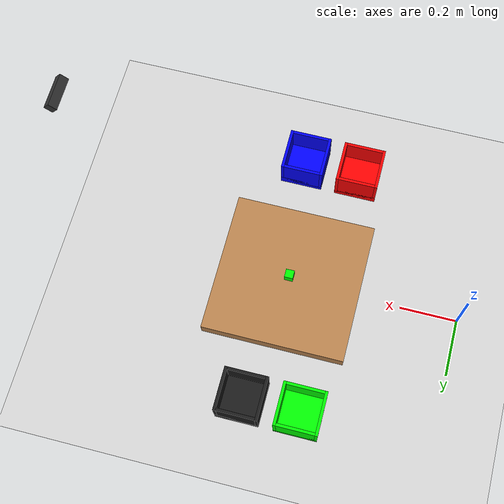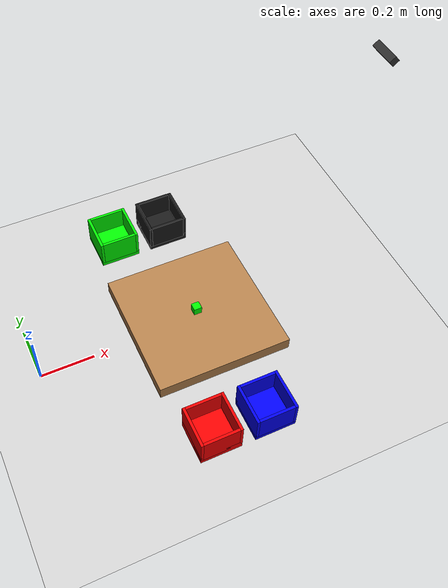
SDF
<?xml version="1.0" ?>
<sdf version="1.7">
  <world name="pick_place_world_with_bins">
    <!-- Physics settings -->
    <physics name="1ms" type="ignored">
      <max_step_size>0.001</max_step_size>
      <real_time_factor>1.0</real_time_factor>
    </physics>

    <!-- Plugin for physics -->
    <plugin filename="ignition-gazebo-physics-system" name="ignition::gazebo::systems::Physics">
    </plugin>

    <!-- Plugin for user commands -->
    <plugin filename="ignition-gazebo-user-commands-system" name="ignition::gazebo::systems::UserCommands">
    </plugin>

    <!-- Plugin for scene broadcasting -->
    <plugin filename="ignition-gazebo-scene-broadcaster-system" name="ignition::gazebo::systems::SceneBroadcaster">
    </plugin>

    <!-- Plugin for sensors (required for cameras and other sensors) -->
    <plugin filename="ignition-gazebo-sensors-system" name="ignition::gazebo::systems::Sensors">
      <render_engine>ogre2</render_engine>
    </plugin>

    <!-- Lighting -->
    <light type="directional" name="sun">
      <cast_shadows>true</cast_shadows>
      <pose>0 0 10 0 0 0</pose>
      <diffuse>0.8 0.8 0.8 1</diffuse>
      <specular>0.2 0.2 0.2 1</specular>
      <attenuation>
        <range>1000</range>
        <constant>0.9</constant>
        <linear>0.01</linear>
        <quadratic>0.001</quadratic>
      </attenuation>
      <direction>-0.5 0.1 -0.9</direction>
    </light>

    <!-- Ground plane -->
    <model name="ground_plane">
      <static>true</static>
      <link name="link">
        <collision name="collision">
          <geometry>
            <plane>
              <normal>0 0 1</normal>
              <size>100 100</size>
            </plane>
          </geometry>
        </collision>
        <visual name="visual">
          <geometry>
            <plane>
              <normal>0 0 1</normal>
              <size>100 100</size>
            </plane>
          </geometry>
          <material>
            <ambient>0.8 0.8 0.8 1</ambient>
            <diffuse>0.8 0.8 0.8 1</diffuse>
            <specular>0.8 0.8 0.8 1</specular>
          </material>
        </visual>
      </link>
    </model>

    <!-- Work Table - Raised to proper height -->
    <include>
      <uri>model://work_table</uri>
      <name>work_table</name>
      <pose>0.6 0.0 0.025 0 0 0</pose>
    </include>

    <!-- Green Bin - Left side front -->
    <include>
      <uri>model://green_bin</uri>
      <name>green_bin</name>
      <pose>0.45 0.45 0.0 0 0 0</pose>
    </include>

    <!-- Black Bin - Left side back -->
    <include>
      <uri>model://black_bin</uri>
      <name>black_bin</name>
      <pose>0.65 0.45 0.0 0 0 0</pose>
    </include>

    <!-- Red Bin - Right side front -->
    <include>
      <uri>model://red_bin</uri>
      <name>red_bin</name>
      <pose>0.45 -0.45 0.0 0 0 0</pose>
    </include>

    <!-- Blue Bin - Right side back -->
    <include>
      <uri>model://blue_bin</uri>
      <name>blue_bin</name>
      <pose>0.65 -0.45 0.0 0 0 0</pose>
    </include>

    <!-- Target cube - On table -->
    <include>
      <uri>model://cube</uri>
      <name>target_cube</name>
      <pose>0.6 0.0 0.065 0 0 0</pose>
    </include>

    <!-- RGB-D Camera - Positioned to match LIBERO agentview camera -->
    <include>
      <uri>model://rgbd_camera</uri>
      <name>workspace_camera</name>
      <pose>1.2 0.0 1.0 0 0.7 3.14159</pose>
    </include>

  </world>
</sdf>

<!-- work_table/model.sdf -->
<sdf version="1.7">
  <model name="work_table">
    <static>true</static>
    <link name="table_link">
      <collision name="table_collision">
        <geometry>
          <box>
            <size>0.5 0.5 0.05</size>
          </box>
        </geometry>
      </collision>
      <visual name="table_visual">
        <geometry>
          <box>
            <size>0.5 0.5 0.05</size>
          </box>
        </geometry>
        <material>
          <ambient>0.7 0.5 0.3 1</ambient>
          <diffuse>0.7 0.5 0.3 1</diffuse>
          <specular>0.1 0.1 0.1 1</specular>
        </material>
      </visual>
    </link>
  </model>
</sdf>

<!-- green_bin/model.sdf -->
<sdf version="1.7">
  <model name="green_bin">
    <static>true</static>
    <link name="bin_link">
      <!-- Bottom - Thick and visible -->
      <collision name="bottom_collision">
        <pose>0 0 0.015 0 0 0</pose>
        <geometry>
          <box>
            <size>0.15 0.15 0.03</size>
          </box>
        </geometry>
      </collision>
      <visual name="bottom_visual">
        <pose>0 0 0.015 0 0 0</pose>
        <geometry>
          <box>
            <size>0.15 0.15 0.03</size>
          </box>
        </geometry>
        <material>
          <ambient>0.0 1.0 0.0 1</ambient>
          <diffuse>0.0 1.0 0.0 1</diffuse>
          <specular>0.2 0.2 0.2 1</specular>
        </material>
      </visual>

      <!-- Front Wall -->
      <collision name="front_wall_collision">
        <pose>0.07 0 0.065 0 0 0</pose>
        <geometry>
          <box>
            <size>0.01 0.15 0.10</size>
          </box>
        </geometry>
      </collision>
      <visual name="front_wall_visual">
        <pose>0.07 0 0.065 0 0 0</pose>
        <geometry>
          <box>
            <size>0.01 0.15 0.10</size>
          </box>
        </geometry>
        <material>
          <ambient>0.0 1.0 0.0 1</ambient>
          <diffuse>0.0 1.0 0.0 1</diffuse>
          <specular>0.2 0.2 0.2 1</specular>
        </material>
      </visual>

      <!-- Back Wall -->
      <collision name="back_wall_collision">
        <pose>-0.07 0 0.065 0 0 0</pose>
        <geometry>
          <box>
            <size>0.01 0.15 0.10</size>
          </box>
        </geometry>
      </collision>
      <visual name="back_wall_visual">
        <pose>-0.07 0 0.065 0 0 0</pose>
        <geometry>
          <box>
            <size>0.01 0.15 0.10</size>
          </box>
        </geometry>
        <material>
          <ambient>0.0 1.0 0.0 1</ambient>
          <diffuse>0.0 1.0 0.0 1</diffuse>
          <specular>0.2 0.2 0.2 1</specular>
        </material>
      </visual>

      <!-- Left Wall -->
      <collision name="left_wall_collision">
        <pose>0 0.07 0.065 0 0 0</pose>
        <geometry>
          <box>
            <size>0.13 0.01 0.10</size>
          </box>
        </geometry>
      </collision>
      <visual name="left_wall_visual">
        <pose>0 0.07 0.065 0 0 0</pose>
        <geometry>
          <box>
            <size>0.13 0.01 0.10</size>
          </box>
        </geometry>
        <material>
          <ambient>0.0 1.0 0.0 1</ambient>
          <diffuse>0.0 1.0 0.0 1</diffuse>
          <specular>0.2 0.2 0.2 1</specular>
        </material>
      </visual>

      <!-- Right Wall -->
      <collision name="right_wall_collision">
        <pose>0 -0.07 0.065 0 0 0</pose>
        <geometry>
          <box>
            <size>0.13 0.01 0.10</size>
          </box>
        </geometry>
      </collision>
      <visual name="right_wall_visual">
        <pose>0 -0.07 0.065 0 0 0</pose>
        <geometry>
          <box>
            <size>0.13 0.01 0.10</size>
          </box>
        </geometry>
        <material>
          <ambient>0.0 1.0 0.0 1</ambient>
          <diffuse>0.0 1.0 0.0 1</diffuse>
          <specular>0.2 0.2 0.2 1</specular>
        </material>
      </visual>
    </link>
  </model>
</sdf>

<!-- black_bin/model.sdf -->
<sdf version="1.7">
  <model name="black_bin">
    <static>true</static>
    <link name="bin_link">
      <!-- Bottom - Thick and visible -->
      <collision name="bottom_collision">
        <pose>0 0 0.015 0 0 0</pose>
        <geometry>
          <box>
            <size>0.15 0.15 0.03</size>
          </box>
        </geometry>
      </collision>
      <visual name="bottom_visual">
        <pose>0 0 0.015 0 0 0</pose>
        <geometry>
          <box>
            <size>0.15 0.15 0.03</size>
          </box>
        </geometry>
        <material>
          <ambient>0.1 0.1 0.1 1</ambient>
          <diffuse>0.1 0.1 0.1 1</diffuse>
          <specular>0.2 0.2 0.2 1</specular>
        </material>
      </visual>

      <!-- Front Wall -->
      <collision name="front_wall_collision">
        <pose>0.07 0 0.065 0 0 0</pose>
        <geometry>
          <box>
            <size>0.01 0.15 0.10</size>
          </box>
        </geometry>
      </collision>
      <visual name="front_wall_visual">
        <pose>0.07 0 0.065 0 0 0</pose>
        <geometry>
          <box>
            <size>0.01 0.15 0.10</size>
          </box>
        </geometry>
        <material>
          <ambient>0.1 0.1 0.1 1</ambient>
          <diffuse>0.1 0.1 0.1 1</diffuse>
          <specular>0.2 0.2 0.2 1</specular>
        </material>
      </visual>

      <!-- Back Wall -->
      <collision name="back_wall_collision">
        <pose>-0.07 0 0.065 0 0 0</pose>
        <geometry>
          <box>
            <size>0.01 0.15 0.10</size>
          </box>
        </geometry>
      </collision>
      <visual name="back_wall_visual">
        <pose>-0.07 0 0.065 0 0 0</pose>
        <geometry>
          <box>
            <size>0.01 0.15 0.10</size>
          </box>
        </geometry>
        <material>
          <ambient>0.1 0.1 0.1 1</ambient>
          <diffuse>0.1 0.1 0.1 1</diffuse>
          <specular>0.2 0.2 0.2 1</specular>
        </material>
      </visual>

      <!-- Left Wall -->
      <collision name="left_wall_collision">
        <pose>0 0.07 0.065 0 0 0</pose>
        <geometry>
          <box>
            <size>0.13 0.01 0.10</size>
          </box>
        </geometry>
      </collision>
      <visual name="left_wall_visual">
        <pose>0 0.07 0.065 0 0 0</pose>
        <geometry>
          <box>
            <size>0.13 0.01 0.10</size>
          </box>
        </geometry>
        <material>
          <ambient>0.1 0.1 0.1 1</ambient>
          <diffuse>0.1 0.1 0.1 1</diffuse>
          <specular>0.2 0.2 0.2 1</specular>
        </material>
      </visual>

      <!-- Right Wall -->
      <collision name="right_wall_collision">
        <pose>0 -0.07 0.065 0 0 0</pose>
        <geometry>
          <box>
            <size>0.13 0.01 0.10</size>
          </box>
        </geometry>
      </collision>
      <visual name="right_wall_visual">
        <pose>0 -0.07 0.065 0 0 0</pose>
        <geometry>
          <box>
            <size>0.13 0.01 0.10</size>
          </box>
        </geometry>
        <material>
          <ambient>0.1 0.1 0.1 1</ambient>
          <diffuse>0.1 0.1 0.1 1</diffuse>
          <specular>0.2 0.2 0.2 1</specular>
        </material>
      </visual>
    </link>
  </model>
</sdf>

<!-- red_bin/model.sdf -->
<sdf version="1.7">
  <model name="red_bin">
    <static>true</static>
    <link name="bin_link">
      <!-- Bottom - Thick and visible -->
      <collision name="bottom_collision">
        <pose>0 0 0.015 0 0 0</pose>
        <geometry>
          <box>
            <size>0.15 0.15 0.03</size>
          </box>
        </geometry>
      </collision>
      <visual name="bottom_visual">
        <pose>0 0 0.015 0 0 0</pose>
        <geometry>
          <box>
            <size>0.15 0.15 0.03</size>
          </box>
        </geometry>
        <material>
          <ambient>1.0 0.0 0.0 1</ambient>
          <diffuse>1.0 0.0 0.0 1</diffuse>
          <specular>0.2 0.2 0.2 1</specular>
        </material>
      </visual>

      <!-- Front Wall -->
      <collision name="front_wall_collision">
        <pose>0.07 0 0.065 0 0 0</pose>
        <geometry>
          <box>
            <size>0.01 0.15 0.10</size>
          </box>
        </geometry>
      </collision>
      <visual name="front_wall_visual">
        <pose>0.07 0 0.065 0 0 0</pose>
        <geometry>
          <box>
            <size>0.01 0.15 0.10</size>
          </box>
        </geometry>
        <material>
          <ambient>1.0 0.0 0.0 1</ambient>
          <diffuse>1.0 0.0 0.0 1</diffuse>
          <specular>0.2 0.2 0.2 1</specular>
        </material>
      </visual>

      <!-- Back Wall -->
      <collision name="back_wall_collision">
        <pose>-0.07 0 0.065 0 0 0</pose>
        <geometry>
          <box>
            <size>0.01 0.15 0.10</size>
          </box>
        </geometry>
      </collision>
      <visual name="back_wall_visual">
        <pose>-0.07 0 0.065 0 0 0</pose>
        <geometry>
          <box>
            <size>0.01 0.15 0.10</size>
          </box>
        </geometry>
        <material>
          <ambient>1.0 0.0 0.0 1</ambient>
          <diffuse>1.0 0.0 0.0 1</diffuse>
          <specular>0.2 0.2 0.2 1</specular>
        </material>
      </visual>

      <!-- Left Wall -->
      <collision name="left_wall_collision">
        <pose>0 0.07 0.065 0 0 0</pose>
        <geometry>
          <box>
            <size>0.13 0.01 0.10</size>
          </box>
        </geometry>
      </collision>
      <visual name="left_wall_visual">
        <pose>0 0.07 0.065 0 0 0</pose>
        <geometry>
          <box>
            <size>0.13 0.01 0.10</size>
          </box>
        </geometry>
        <material>
          <ambient>1.0 0.0 0.0 1</ambient>
          <diffuse>1.0 0.0 0.0 1</diffuse>
          <specular>0.2 0.2 0.2 1</specular>
        </material>
      </visual>

      <!-- Right Wall -->
      <collision name="right_wall_collision">
        <pose>0 -0.07 0.065 0 0 0</pose>
        <geometry>
          <box>
            <size>0.13 0.01 0.10</size>
          </box>
        </geometry>
      </collision>
      <visual name="right_wall_visual">
        <pose>0 -0.07 0.065 0 0 0</pose>
        <geometry>
          <box>
            <size>0.13 0.01 0.10</size>
          </box>
        </geometry>
        <material>
          <ambient>1.0 0.0 0.0 1</ambient>
          <diffuse>1.0 0.0 0.0 1</diffuse>
          <specular>0.2 0.2 0.2 1</specular>
        </material>
      </visual>
    </link>
  </model>
</sdf>

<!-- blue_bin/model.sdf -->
<sdf version="1.7">
  <model name="blue_bin">
    <static>true</static>
    <link name="bin_link">
      <!-- Bottom - Thick and visible -->
      <collision name="bottom_collision">
        <pose>0 0 0.015 0 0 0</pose>
        <geometry>
          <box>
            <size>0.15 0.15 0.03</size>
          </box>
        </geometry>
      </collision>
      <visual name="bottom_visual">
        <pose>0 0 0.015 0 0 0</pose>
        <geometry>
          <box>
            <size>0.15 0.15 0.03</size>
          </box>
        </geometry>
        <material>
          <ambient>0.0 0.0 1.0 1</ambient>
          <diffuse>0.0 0.0 1.0 1</diffuse>
          <specular>0.2 0.2 0.2 1</specular>
        </material>
      </visual>

      <!-- Front Wall -->
      <collision name="front_wall_collision">
        <pose>0.07 0 0.065 0 0 0</pose>
        <geometry>
          <box>
            <size>0.01 0.15 0.10</size>
          </box>
        </geometry>
      </collision>
      <visual name="front_wall_visual">
        <pose>0.07 0 0.065 0 0 0</pose>
        <geometry>
          <box>
            <size>0.01 0.15 0.10</size>
          </box>
        </geometry>
        <material>
          <ambient>0.0 0.0 1.0 1</ambient>
          <diffuse>0.0 0.0 1.0 1</diffuse>
          <specular>0.2 0.2 0.2 1</specular>
        </material>
      </visual>

      <!-- Back Wall -->
      <collision name="back_wall_collision">
        <pose>-0.07 0 0.065 0 0 0</pose>
        <geometry>
          <box>
            <size>0.01 0.15 0.10</size>
          </box>
        </geometry>
      </collision>
      <visual name="back_wall_visual">
        <pose>-0.07 0 0.065 0 0 0</pose>
        <geometry>
          <box>
            <size>0.01 0.15 0.10</size>
          </box>
        </geometry>
        <material>
          <ambient>0.0 0.0 1.0 1</ambient>
          <diffuse>0.0 0.0 1.0 1</diffuse>
          <specular>0.2 0.2 0.2 1</specular>
        </material>
      </visual>

      <!-- Left Wall -->
      <collision name="left_wall_collision">
        <pose>0 0.07 0.065 0 0 0</pose>
        <geometry>
          <box>
            <size>0.13 0.01 0.10</size>
          </box>
        </geometry>
      </collision>
      <visual name="left_wall_visual">
        <pose>0 0.07 0.065 0 0 0</pose>
        <geometry>
          <box>
            <size>0.13 0.01 0.10</size>
          </box>
        </geometry>
        <material>
          <ambient>0.0 0.0 1.0 1</ambient>
          <diffuse>0.0 0.0 1.0 1</diffuse>
          <specular>0.2 0.2 0.2 1</specular>
        </material>
      </visual>

      <!-- Right Wall -->
      <collision name="right_wall_collision">
        <pose>0 -0.07 0.065 0 0 0</pose>
        <geometry>
          <box>
            <size>0.13 0.01 0.10</size>
          </box>
        </geometry>
      </collision>
      <visual name="right_wall_visual">
        <pose>0 -0.07 0.065 0 0 0</pose>
        <geometry>
          <box>
            <size>0.13 0.01 0.10</size>
          </box>
        </geometry>
        <material>
          <ambient>0.0 0.0 1.0 1</ambient>
          <diffuse>0.0 0.0 1.0 1</diffuse>
          <specular>0.2 0.2 0.2 1</specular>
        </material>
      </visual>
    </link>
  </model>
</sdf>

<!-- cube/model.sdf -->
<sdf version="1.7">
  <model name="cube">
    <static>false</static>
    <link name="cube_link">
      <inertial>
        <mass>0.1</mass>
        <inertia>
          <ixx>0.000015</ixx>
          <iyy>0.000015</iyy>
          <izz>0.000015</izz>
          <ixy>0</ixy>
          <ixz>0</ixz>
          <iyz>0</iyz>
        </inertia>
      </inertial>
      <collision name="cube_collision">
        <geometry>
          <box>
            <size>0.03 0.03 0.03</size>
          </box>
        </geometry>
        <surface>
          <friction>
            <ode>
              <mu>1.5</mu>
              <mu2>1.5</mu2>
            </ode>
          </friction>
          <contact>
            <ode>
              <kp>1000000</kp>
              <kd>100</kd>
            </ode>
          </contact>
        </surface>
      </collision>
      <visual name="cube_visual">
        <geometry>
          <box>
            <size>0.03 0.03 0.03</size>
          </box>
        </geometry>
        <material>
          <ambient>0 1 0 1</ambient>
          <diffuse>0 1 0 1</diffuse>
          <specular>0.1 0.1 0.1 1</specular>
        </material>
      </visual>
    </link>

    <!-- Plugin to publish pose -->
    <plugin filename="gz-sim-pose-publisher-system" name="gz::sim::systems::PosePublisher">
      <publish_nested_model_pose>true</publish_nested_model_pose>
      <publish_link_pose>false</publish_link_pose>
      <publish_collision_pose>false</publish_collision_pose>
      <publish_visual_pose>false</publish_visual_pose>
      <use_pose_vector_msg>false</use_pose_vector_msg>
      <static_publisher>false</static_publisher>
      <static_update_frequency>10</static_update_frequency>
    </plugin>
  </model>
</sdf>

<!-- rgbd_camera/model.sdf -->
<sdf version="1.7">
  <model name="rgbd_camera">
    <pose>0 0 0 0 0 0</pose>
    <static>true</static>

    <!-- Camera body visual -->
    <link name="camera_link">
      <pose>0 0 0 0 0 0</pose>

      <inertial>
        <mass>0.1</mass>
        <inertia>
          <ixx>0.0001</ixx>
          <ixy>0</ixy>
          <ixz>0</ixz>
          <iyy>0.0001</iyy>
          <iyz>0</iyz>
          <izz>0.0001</izz>
        </inertia>
      </inertial>

      <!-- Camera visual representation -->
      <visual name="camera_visual">
        <geometry>
          <box>
            <size>0.025 0.090 0.025</size>
          </box>
        </geometry>
        <material>
          <ambient>0.2 0.2 0.2 1</ambient>
          <diffuse>0.2 0.2 0.2 1</diffuse>
          <specular>0.1 0.1 0.1 1</specular>
        </material>
      </visual>

      <collision name="camera_collision">
        <geometry>
          <box>
            <size>0.025 0.090 0.025</size>
          </box>
        </geometry>
      </collision>

      <!-- RGB-D Camera Sensor -->
      <sensor name="rgbd_camera_sensor" type="rgbd_camera">
        <pose>0 0 0 0 0 0</pose>
        <always_on>1</always_on>
        <update_rate>30</update_rate>
        <topic>rgbd_camera</topic>
        <enable_metrics>false</enable_metrics>

        <!-- Camera intrinsics (similar to Intel RealSense D435) -->
        <camera name="rgbd_camera">
          <horizontal_fov>1.211</horizontal_fov>  <!-- ~69.4 degrees -->
          <image>
            <width>640</width>
            <height>480</height>
            <format>R8G8B8</format>
          </image>
          <clip>
            <near>0.1</near>
            <far>10.0</far>
          </clip>
          <noise>
            <type>gaussian</type>
            <mean>0.0</mean>
            <stddev>0.007</stddev>
          </noise>
          <lens>
            <intrinsics>
              <!-- fx, fy, cx, cy for 640x480 -->
              <fx>554.25</fx>
              <fy>554.25</fy>
              <cx>320.5</cx>
              <cy>240.5</cy>
              <s>0</s>
            </intrinsics>
          </lens>
        </camera>

        <!-- Depth camera configuration -->
        <depth_camera>
          <clip>
            <near>0.1</near>
            <far>10.0</far>
          </clip>
        </depth_camera>
      </sensor>
    </link>
  </model>
</sdf>
